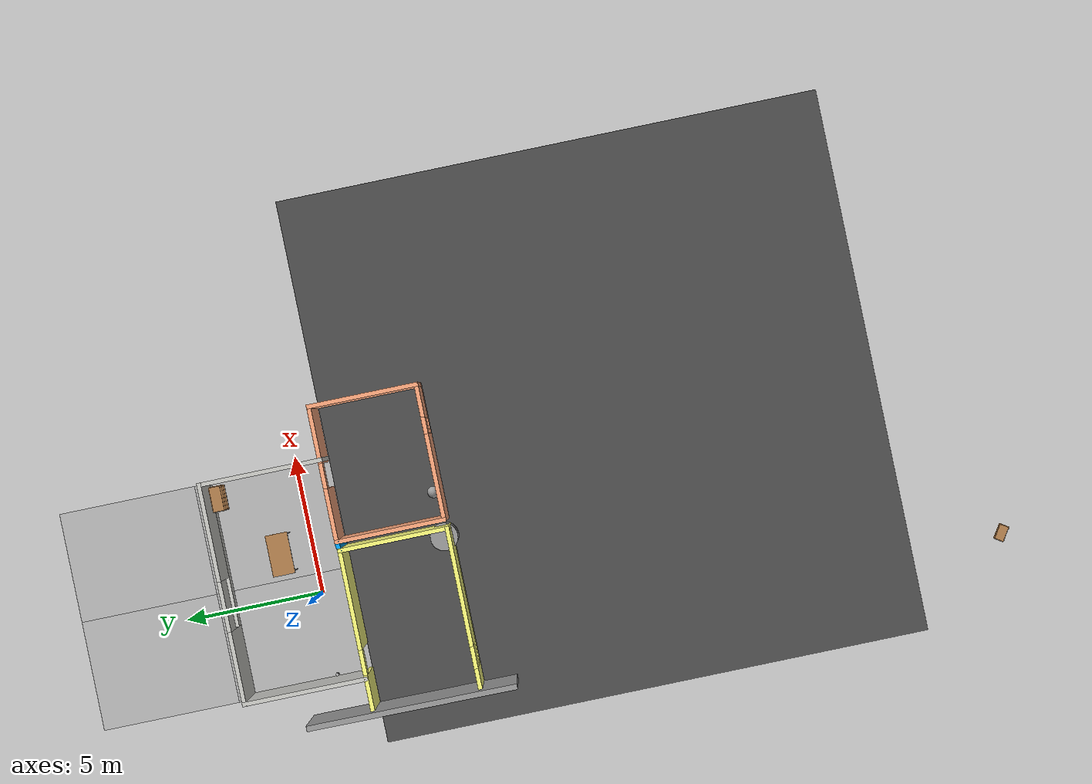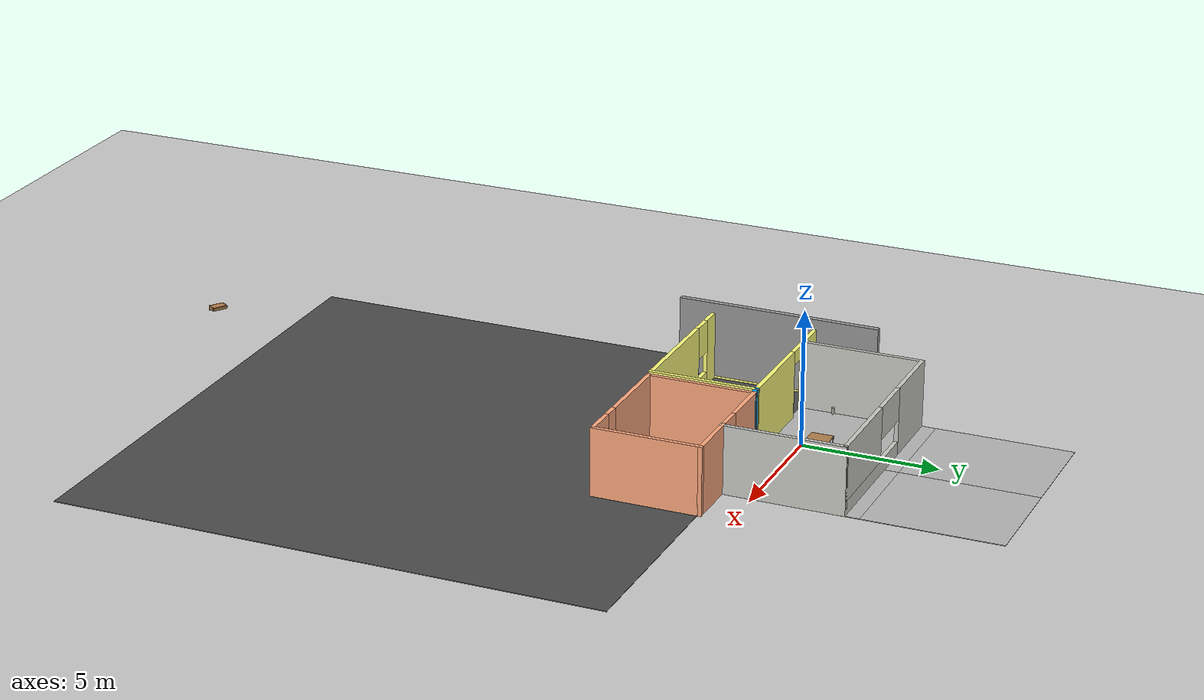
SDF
<sdf version="1.6">
 <world name="default">
  <light name="sun" type="directional">
   <pose>0 0 15 0 -0 0</pose>
   <diffuse>1 1 1 1</diffuse>
   <specular>0.1 0.1 0.1 1</specular>
   <attenuation>
    <range>1000</range>
    <constant>0.9</constant>
    <linear>0.01</linear>
    <quadratic>0.001</quadratic>
   </attenuation>
   <direction>-0.5 0.5 -1</direction>
  </light>
  <model name="ground_plane">
   <static>1</static>
   <link name="link">
    <collision name="collision">
     <geometry><plane><normal>0 0 1</normal><size>100 100</size></plane></geometry>
     <surface><friction><ode><mu>100</mu><mu2>50</mu2></ode></friction></surface>
    </collision>
    <visual name="visual">
     <transparency>1</transparency>
     <cast_shadows>0</cast_shadows>
     <geometry><plane><normal>0 0 1</normal><size>100 100</size></plane></geometry>
     <material>
      <script><uri>file://media/materials/scripts/gazebo.material</uri><name>Gazebo/Grey</name></script>
     </material>
    </visual>
   </link>
  </model>
  <gravity>0 0 -9.8</gravity>
  <magnetic_field>6e-06 2.3e-05 -4.2e-05</magnetic_field>
  <atmosphere type="adiabatic"/>
  <physics name="default_physics" default="0" type="ode">
   <max_step_size>0.001</max_step_size>
   <real_time_factor>1</real_time_factor>
   <real_time_update_rate>1000</real_time_update_rate>
  </physics>
  <scene><ambient>0.4 0.4 0.4 1</ambient><background>0.7 0.7 0.7 1</background><shadows>1</shadows></scene>
  <spherical_coordinates>
   <surface_model>EARTH_WGS84</surface_model>
   <latitude_deg>0</latitude_deg>
   <longitude_deg>0</longitude_deg>
   <elevation>0</elevation>
   <heading_deg>0</heading_deg>
  </spherical_coordinates>
  <model name="TestScenario.world">
   <pose>1.12089 -0.88489 0 0 -0 0</pose>
   <link name="Wall_0">
    <collision name="Wall_0_Collision">
     <geometry><box><size>4 0.15 2.5</size></box></geometry>
     <pose>0 0 1.25 0 -0 0</pose>
    </collision>
    <visual name="Wall_0_Visual">
     <pose>0 0 1.25 0 -0 0</pose>
     <geometry><box><size>4 0.15 2.5</size></box></geometry>
     <material>
      <script><uri>file://media/materials/scripts/gazebo.material</uri><name>Gazebo/Grey</name></script>
      <ambient>1 1 0.498039 1</ambient>
     </material>
     <meta><layer>0</layer></meta>
    </visual>
    <pose>-5.51 -2.18338 0 0 0 -1.5708</pose>
   </link>
   <link name="Wall_1">
    <pose>-2.585 -4.10838 0 0 -0 0</pose>
    <visual name="Wall_1_Visual_0">
     <pose>-2.55175 0 1.25 0 -0 0</pose>
     <geometry><box><size>0.896495 0.15 2.5</size></box></geometry>
     <material>
      <script><uri>file://media/materials/scripts/gazebo.material</uri><name>Gazebo/Grey</name></script>
      <ambient>1 1 0.498039 1</ambient>
     </material>
     <meta><layer>0</layer></meta>
    </visual>
    <collision name="Wall_1_Collision_0">
     <geometry><box><size>0.896495 0.15 2.5</size></box></geometry>
     <pose>-2.55175 0 1.25 0 -0 0</pose>
    </collision>
    <visual name="Wall_1_Visual_1">
     <pose>0.448248 0 0.25 0 -0 0</pose>
     <geometry><box><size>5.10351 0.15 0.5</size></box></geometry>
     <material>
      <script><uri>file://media/materials/scripts/gazebo.material</uri><name>Gazebo/Grey</name></script>
      <ambient>1 1 0.498039 1</ambient>
     </material>
     <meta><layer>0</layer></meta>
    </visual>
    <collision name="Wall_1_Collision_1">
     <geometry><box><size>5.10351 0.15 0.5</size></box></geometry>
     <pose>0.448248 0 0.25 0 -0 0</pose>
    </collision>
    <visual name="Wall_1_Visual_2">
     <pose>0.848248 0 1.5 0 -0 0</pose>
     <geometry><box><size>4.30351 0.15 2</size></box></geometry>
     <material>
      <script><uri>file://media/materials/scripts/gazebo.material</uri><name>Gazebo/Grey</name></script>
      <ambient>1 1 0.498039 1</ambient>
     </material>
     <meta><layer>0</layer></meta>
    </visual>
    <collision name="Wall_1_Collision_2">
     <geometry><box><size>4.30351 0.15 2</size></box></geometry>
     <pose>0.848248 0 1.5 0 -0 0</pose>
    </collision>
    <visual name="Wall_1_Visual_3">
     <pose>-1.70351 0 1.9 0 -0 0</pose>
     <geometry><box><size>0.8 0.15 1.2</size></box></geometry>
     <material>
      <script><uri>file://media/materials/scripts/gazebo.material</uri><name>Gazebo/Grey</name></script>
      <ambient>1 1 0.498039 1</ambient>
     </material>
     <meta><layer>0</layer></meta>
    </visual>
    <collision name="Wall_1_Collision_3">
     <geometry><box><size>0.8 0.15 1.2</size></box></geometry>
     <pose>-1.70351 0 1.9 0 -0 0</pose>
    </collision>
   </link>
   <link name="Wall_10">
    <collision name="Wall_10_Collision">
     <geometry><box><size>4.5 0.15 2.5</size></box></geometry>
     <pose>0 0 1.25 0 -0 0</pose>
    </collision>
    <visual name="Wall_10_Visual">
     <pose>0 0 1.25 0 -0 0</pose>
     <geometry><box><size>4.5 0.15 2.5</size></box></geometry>
     <material>
      <script><uri>file://media/materials/scripts/gazebo.material</uri><name>Gazebo/CeilingTiled</name></script>
      <ambient>0 0.666667 1 1</ambient>
     </material>
     <meta><layer>0</layer></meta>
    </visual>
    <pose>-4.25197 1.93338 0 0 -0 1.5708</pose>
   </link>
   <link name="Wall_11">
    <pose>-0.326971 4.10838 0 0 -0 0</pose>
    <visual name="Wall_11_Visual_0">
     <pose>-2.67301 0 1.25 0 -0 0</pose>
     <geometry><box><size>2.65397 0.15 2.5</size></box></geometry>
     <material>
      <script><uri>file://media/materials/scripts/gazebo.material</uri><name>Gazebo/CeilingTiled</name></script>
      <ambient>0 0.666667 1 1</ambient>
     </material>
     <meta><layer>0</layer></meta>
    </visual>
    <collision name="Wall_11_Collision_0">
     <geometry><box><size>2.65397 0.15 2.5</size></box></geometry>
     <pose>-2.67301 0 1.25 0 -0 0</pose>
    </collision>
    <visual name="Wall_11_Visual_1">
     <pose>1.32699 0 0.25 0 -0 0</pose>
     <geometry><box><size>5.34603 0.15 0.5</size></box></geometry>
     <material>
      <script><uri>file://media/materials/scripts/gazebo.material</uri><name>Gazebo/CeilingTiled</name></script>
      <ambient>0 0.666667 1 1</ambient>
     </material>
     <meta><layer>0</layer></meta>
    </visual>
    <collision name="Wall_11_Collision_1">
     <geometry><box><size>5.34603 0.15 0.5</size></box></geometry>
     <pose>1.32699 0 0.25 0 -0 0</pose>
    </collision>
    <visual name="Wall_11_Visual_2">
     <pose>2.22698 0 1.5 0 -0 0</pose>
     <geometry><box><size>3.54603 0.15 2</size></box></geometry>
     <material>
      <script><uri>file://media/materials/scripts/gazebo.material</uri><name>Gazebo/CeilingTiled</name></script>
      <ambient>0 0.666667 1 1</ambient>
     </material>
     <meta><layer>0</layer></meta>
    </visual>
    <collision name="Wall_11_Collision_2">
     <geometry><box><size>3.54603 0.15 2</size></box></geometry>
     <pose>2.22698 0 1.5 0 -0 0</pose>
    </collision>
    <visual name="Wall_11_Visual_3">
     <pose>-0.446031 0 1.9 0 -0 0</pose>
     <geometry><box><size>1.8 0.15 1.2</size></box></geometry>
     <material>
      <script><uri>file://media/materials/scripts/gazebo.material</uri><name>Gazebo/CeilingTiled</name></script>
      <ambient>0 0.666667 1 1</ambient>
     </material>
     <meta><layer>0</layer></meta>
    </visual>
    <collision name="Wall_11_Collision_3">
     <geometry><box><size>1.8 0.15 1.2</size></box></geometry>
     <pose>-0.446031 0 1.9 0 -0 0</pose>
    </collision>
   </link>
   <link name="Wall_12">
    <collision name="Wall_12_Collision">
     <geometry><box><size>4.5 0.15 2.5</size></box></geometry>
     <pose>0 0 1.25 0 -0 0</pose>
    </collision>
    <visual name="Wall_12_Visual">
     <pose>0 0 1.25 0 -0 0</pose>
     <geometry><box><size>4.5 0.15 2.5</size></box></geometry>
     <material>
      <script><uri>file://media/materials/scripts/gazebo.material</uri><name>Gazebo/CeilingTiled</name></script>
      <ambient>0 0.666667 1 1</ambient>
     </material>
     <meta><layer>0</layer></meta>
    </visual>
    <pose>3.59803 1.93338 0 0 0 -1.5708</pose>
   </link>
   <link name="Wall_14">
    <collision name="Wall_14_Collision">
     <geometry><box><size>0.47249 0.15 2.5</size></box></geometry>
     <pose>0 0 1.25 0 -0 0</pose>
    </collision>
    <visual name="Wall_14_Visual">
     <pose>0 0 1.25 0 -0 0</pose>
     <geometry><box><size>0.47249 0.15 2.5</size></box></geometry>
     <material>
      <script><uri>file://media/materials/scripts/gazebo.material</uri><name>Gazebo/Grey</name></script>
      <ambient>0 0.666667 1 1</ambient>
     </material>
     <meta><layer>0</layer></meta>
    </visual>
    <pose>0.5 -0.238381 0 0 -0 0.124355</pose>
   </link>
   <link name="Wall_2">
    <collision name="Wall_2_Collision">
     <geometry><box><size>4 0.15 2.5</size></box></geometry>
     <pose>0 0 1.25 0 -0 0</pose>
    </collision>
    <visual name="Wall_2_Visual">
     <pose>0 0 1.25 0 -0 0</pose>
     <geometry><box><size>4 0.15 2.5</size></box></geometry>
     <material>
      <script><uri>file://media/materials/scripts/gazebo.material</uri><name>Gazebo/Grey</name></script>
      <ambient>1 1 0.498039 1</ambient>
     </material>
     <meta><layer>0</layer></meta>
    </visual>
    <pose>0.34 -2.18338 0 0 -0 1.5708</pose>
   </link>
   <link name="Wall_3">
    <pose>-2.585 -0.258381 0 0 -0 3.14159</pose>
    <visual name="Wall_3_Visual_0">
     <pose>-1.18068 0 1.25 0 -0 0</pose>
     <geometry><box><size>3.63865 0.15 2.5</size></box></geometry>
     <material>
      <script><uri>file://media/materials/scripts/gazebo.material</uri><name>Gazebo/Grey</name></script>
      <ambient>1 1 0.498039 1</ambient>
     </material>
     <meta><layer>0</layer></meta>
    </visual>
    <collision name="Wall_3_Collision_0">
     <geometry><box><size>3.63865 0.15 2.5</size></box></geometry>
     <pose>-1.18068 0 1.25 0 -0 0</pose>
    </collision>
    <visual name="Wall_3_Visual_1">
     <pose>2.26932 0 1.25 0 -0 0</pose>
     <geometry><box><size>1.46135 0.15 2.5</size></box></geometry>
     <material>
      <script><uri>file://media/materials/scripts/gazebo.material</uri><name>Gazebo/Grey</name></script>
      <ambient>1 1 0.498039 1</ambient>
     </material>
     <meta><layer>0</layer></meta>
    </visual>
    <collision name="Wall_3_Collision_1">
     <geometry><box><size>1.46135 0.15 2.5</size></box></geometry>
     <pose>2.26932 0 1.25 0 -0 0</pose>
    </collision>
    <visual name="Wall_3_Visual_2">
     <pose>1.08865 0 2.25 0 -0 0</pose>
     <geometry><box><size>0.9 0.15 0.5</size></box></geometry>
     <material>
      <script><uri>file://media/materials/scripts/gazebo.material</uri><name>Gazebo/Grey</name></script>
      <ambient>1 1 0.498039 1</ambient>
     </material>
     <meta><layer>0</layer></meta>
    </visual>
    <collision name="Wall_3_Collision_2">
     <geometry><box><size>0.9 0.15 0.5</size></box></geometry>
     <pose>1.08865 0 2.25 0 -0 0</pose>
    </collision>
   </link>
   <link name="Wall_5">
    <collision name="Wall_5_Collision">
     <geometry><box><size>4 0.15 2.5</size></box></geometry>
     <pose>0 0 1.25 0 -0 0</pose>
    </collision>
    <visual name="Wall_5_Visual">
     <pose>0 0 1.25 0 -0 0</pose>
     <geometry><box><size>4 0.15 2.5</size></box></geometry>
     <material>
      <script><uri>file://media/materials/scripts/gazebo.material</uri><name>Gazebo/Grey</name></script>
      <ambient>1 0.666667 0.498039 1</ambient>
     </material>
     <meta><layer>0</layer></meta>
    </visual>
    <pose>0.66 -2.14338 0 0 0 -1.5708</pose>
   </link>
   <link name="Wall_6">
    <pose>3.085 -4.06838 0 0 -0 0</pose>
    <visual name="Wall_6_Visual_0">
     <pose>-0.924117 0 1.25 0 -0 0</pose>
     <geometry><box><size>3.15177 0.15 2.5</size></box></geometry>
     <material>
      <script><uri>file://media/materials/scripts/gazebo.material</uri><name>Gazebo/Grey</name></script>
      <ambient>1 0.666667 0.498039 1</ambient>
     </material>
     <meta><layer>0</layer></meta>
    </visual>
    <collision name="Wall_6_Collision_0">
     <geometry><box><size>3.15177 0.15 2.5</size></box></geometry>
     <pose>-0.924117 0 1.25 0 -0 0</pose>
    </collision>
    <visual name="Wall_6_Visual_1">
     <pose>1.57588 0 0.25 0 -0 0</pose>
     <geometry><box><size>1.84824 0.15 0.5</size></box></geometry>
     <material>
      <script><uri>file://media/materials/scripts/gazebo.material</uri><name>Gazebo/Grey</name></script>
      <ambient>1 0.666667 0.498039 1</ambient>
     </material>
     <meta><layer>0</layer></meta>
    </visual>
    <collision name="Wall_6_Collision_1">
     <geometry><box><size>1.84824 0.15 0.5</size></box></geometry>
     <pose>1.57588 0 0.25 0 -0 0</pose>
    </collision>
    <visual name="Wall_6_Visual_2">
     <pose>1.87588 0 1.5 0 -0 0</pose>
     <geometry><box><size>1.24823 0.15 2</size></box></geometry>
     <material>
      <script><uri>file://media/materials/scripts/gazebo.material</uri><name>Gazebo/Grey</name></script>
      <ambient>1 0.666667 0.498039 1</ambient>
     </material>
     <meta><layer>0</layer></meta>
    </visual>
    <collision name="Wall_6_Collision_2">
     <geometry><box><size>1.24823 0.15 2</size></box></geometry>
     <pose>1.87588 0 1.5 0 -0 0</pose>
    </collision>
    <visual name="Wall_6_Visual_3">
     <pose>0.951765 0 2 0 -0 0</pose>
     <geometry><box><size>0.6 0.15 1</size></box></geometry>
     <material>
      <script><uri>file://media/materials/scripts/gazebo.material</uri><name>Gazebo/Grey</name></script>
      <ambient>1 0.666667 0.498039 1</ambient>
     </material>
     <meta><layer>0</layer></meta>
    </visual>
    <collision name="Wall_6_Collision_3">
     <geometry><box><size>0.6 0.15 1</size></box></geometry>
     <pose>0.951765 0 2 0 -0 0</pose>
    </collision>
   </link>
   <link name="Wall_7">
    <collision name="Wall_7_Collision">
     <geometry><box><size>4 0.15 2.5</size></box></geometry>
     <pose>0 0 1.25 0 -0 0</pose>
    </collision>
    <visual name="Wall_7_Visual">
     <pose>0 0 1.25 0 -0 0</pose>
     <geometry><box><size>4 0.15 2.5</size></box></geometry>
     <material>
      <script><uri>file://media/materials/scripts/gazebo.material</uri><name>Gazebo/Grey</name></script>
      <ambient>1 0.666667 0.498039 1</ambient>
     </material>
     <meta><layer>0</layer></meta>
    </visual>
    <pose>5.51 -2.14338 0 0 -0 1.5708</pose>
   </link>
   <link name="Wall_8">
    <pose>3.085 -0.218381 0 0 -0 3.14159</pose>
    <visual name="Wall_8_Visual_0">
     <pose>-1.4416 0 1.25 0 -0 0</pose>
     <geometry><box><size>2.1168 0.15 2.5</size></box></geometry>
     <material>
      <script><uri>file://media/materials/scripts/gazebo.material</uri><name>Gazebo/Grey</name></script>
      <ambient>1 0.666667 0.498039 1</ambient>
     </material>
     <meta><layer>0</layer></meta>
    </visual>
    <collision name="Wall_8_Collision_0">
     <geometry><box><size>2.1168 0.15 2.5</size></box></geometry>
     <pose>-1.4416 0 1.25 0 -0 0</pose>
    </collision>
    <visual name="Wall_8_Visual_1">
     <pose>1.5084 0 1.25 0 -0 0</pose>
     <geometry><box><size>1.9832 0.15 2.5</size></box></geometry>
     <material>
      <script><uri>file://media/materials/scripts/gazebo.material</uri><name>Gazebo/Grey</name></script>
      <ambient>1 0.666667 0.498039 1</ambient>
     </material>
     <meta><layer>0</layer></meta>
    </visual>
    <collision name="Wall_8_Collision_1">
     <geometry><box><size>1.9832 0.15 2.5</size></box></geometry>
     <pose>1.5084 0 1.25 0 -0 0</pose>
    </collision>
    <visual name="Wall_8_Visual_2">
     <pose>0.066797 0 2.25 0 -0 0</pose>
     <geometry><box><size>0.9 0.15 0.5</size></box></geometry>
     <material>
      <script><uri>file://media/materials/scripts/gazebo.material</uri><name>Gazebo/Grey</name></script>
      <ambient>1 0.666667 0.498039 1</ambient>
     </material>
     <meta><layer>0</layer></meta>
    </visual>
    <collision name="Wall_8_Collision_2">
     <geometry><box><size>0.9 0.15 0.5</size></box></geometry>
     <pose>0.066797 0 2.25 0 -0 0</pose>
    </collision>
   </link>
   <static>1</static>
  </model>
  <model name="bookshelf">
   <static>1</static>
   <link name="link">
    <inertial><mass>1</mass></inertial>
    <collision name="back">
     <pose>0 0.005 0.6 0 -0 0</pose>
     <geometry><box><size>0.9 0.01 1.2</size></box></geometry>
    </collision>
    <visual name="visual1">
     <pose>0 0.005 0.6 0 -0 0</pose>
     <geometry><box><size>0.9 0.01 1.2</size></box></geometry>
     <material>
      <script><uri>file://media/materials/scripts/gazebo.material</uri><name>Gazebo/Wood</name></script>
     </material>
    </visual>
    <collision name="left_side">
     <pose>0.45 -0.195 0.6 0 -0 0</pose>
     <geometry><box><size>0.02 0.4 1.2</size></box></geometry>
    </collision>
    <visual name="visual2">
     <pose>0.45 -0.195 0.6 0 -0 0</pose>
     <geometry><box><size>0.02 0.4 1.2</size></box></geometry>
     <material>
      <script><uri>file://media/materials/scripts/gazebo.material</uri><name>Gazebo/Wood</name></script>
     </material>
    </visual>
    <collision name="right_side">
     <pose>-0.45 -0.195 0.6 0 -0 0</pose>
     <geometry><box><size>0.02 0.4 1.2</size></box></geometry>
    </collision>
    <visual name="visual3">
     <pose>-0.45 -0.195 0.6 0 -0 0</pose>
     <geometry><box><size>0.02 0.4 1.2</size></box></geometry>
     <material>
      <script><uri>file://media/materials/scripts/gazebo.material</uri><name>Gazebo/Wood</name></script>
     </material>
    </visual>
    <collision name="bottom">
     <pose>0 -0.195 0.03 0 -0 0</pose>
     <geometry><box><size>0.88 0.4 0.06</size></box></geometry>
    </collision>
    <visual name="visual4">
     <pose>0 -0.195 0.03 0 -0 0</pose>
     <geometry><box><size>0.88 0.4 0.06</size></box></geometry>
     <material>
      <script><uri>file://media/materials/scripts/gazebo.material</uri><name>Gazebo/Wood</name></script>
     </material>
    </visual>
    <collision name="top">
     <pose>0 -0.195 1.19 0 -0 0</pose>
     <geometry><box><size>0.88 0.4 0.02</size></box></geometry>
    </collision>
    <visual name="visual5">
     <pose>0 -0.195 1.19 0 -0 0</pose>
     <geometry><box><size>0.88 0.4 0.02</size></box></geometry>
     <material>
      <script><uri>file://media/materials/scripts/gazebo.material</uri><name>Gazebo/Wood</name></script>
     </material>
    </visual>
    <collision name="low_shelf">
     <pose>0 -0.195 0.43 0 -0 0</pose>
     <geometry><box><size>0.88 0.4 0.02</size></box></geometry>
    </collision>
    <visual name="visual6">
     <pose>0 -0.195 0.43 0 -0 0</pose>
     <geometry><box><size>0.88 0.4 0.02</size></box></geometry>
     <material>
      <script><uri>file://media/materials/scripts/gazebo.material</uri><name>Gazebo/Wood</name></script>
     </material>
    </visual>
    <collision name="high_shelf">
     <pose>0 -0.195 0.8 0 -0 0</pose>
     <geometry><box><size>0.88 0.4 0.02</size></box></geometry>
    </collision>
    <visual name="visual7">
     <pose>0 -0.195 0.8 0 -0 0</pose>
     <geometry><box><size>0.88 0.4 0.02</size></box></geometry>
     <material>
      <script><uri>file://media/materials/scripts/gazebo.material</uri><name>Gazebo/Wood</name></script>
     </material>
    </visual>
   </link>
   <pose>4.10392 3.11172 0 0 -0 0</pose>
  </model>
  <model name="grey_wall">
   <static>1</static>
   <link name="link">
    <pose>0 0 1.4 0 -0 0</pose>
    <collision name="collision"><geometry><box><size>7.5 0.2 2.8</size></box></geometry></collision>
    <visual name="visual">
     <cast_shadows>0</cast_shadows>
     <geometry><box><size>7.5 0.2 2.8</size></box></geometry>
     <material>
      <script>
       <uri>model://grey_wall/materials/scripts</uri>
       <uri>model://grey_wall/materials/textures</uri>
       <name>vrc/grey_wall</name>
      </script>
     </material>
    </visual>
   </link>
   <pose>-4.39419 -2.53941 0.08762 0 -0 1.56489</pose>
  </model>
  <model name="mud_box">
   <static>1</static>
   <link name="link">
    <collision name="collision"><geometry><box><size>8 10 0.2</size></box></geometry></collision>
    <visual name="visual_1">
     <pose>-2 2.5 0 0 -0 0</pose>
     <cast_shadows>0</cast_shadows>
     <geometry><box><size>4 5 0.2</size></box></geometry>
     <material>
      <script>
       <uri>model://mud_box/materials/scripts</uri>
       <uri>model://mud_box/materials/textures</uri>
       <name>vrc/mud</name>
      </script>
     </material>
    </visual>
    <visual name="visual_2">
     <pose>2 2.5 0 0 -0 0</pose>
     <cast_shadows>0</cast_shadows>
     <geometry><box><size>4 5 0.2</size></box></geometry>
     <material>
      <script>
       <uri>model://mud_box/materials/scripts</uri>
       <uri>model://mud_box/materials/textures</uri>
       <name>vrc/mud</name>
      </script>
     </material>
    </visual>
    <visual name="visual_3">
     <pose>2 -2.5 0 0 -0 0</pose>
     <cast_shadows>0</cast_shadows>
     <geometry><box><size>4 5 0.2</size></box></geometry>
     <material>
      <script>
       <uri>model://mud_box/materials/scripts</uri>
       <uri>model://mud_box/materials/textures</uri>
       <name>vrc/mud</name>
      </script>
     </material>
    </visual>
    <visual name="visual_4">
     <pose>-2 -2.5 0 0 -0 0</pose>
     <cast_shadows>0</cast_shadows>
     <geometry><box><size>4 5 0.2</size></box></geometry>
     <material>
      <script>
       <uri>model://mud_box/materials/scripts</uri>
       <uri>model://mud_box/materials/textures</uri>
       <name>vrc/mud</name>
      </script>
     </material>
    </visual>
   </link>
   <pose>0.715638 3.79163 -0.119521 0 -0 0</pose>
  </model>
  <model name="table">
   <static>1</static>
   <link name="link">
    <collision name="surface">
     <pose>0 0 1 0 -0 0</pose>
     <geometry><box><size>1.5 0.8 0.03</size></box></geometry>
     <surface><friction><ode><mu>0.6</mu><mu2>0.6</mu2></ode></friction></surface>
    </collision>
    <visual name="visual1">
     <pose>0 0 1 0 -0 0</pose>
     <geometry><box><size>1.5 0.8 0.03</size></box></geometry>
     <material>
      <script><uri>file://media/materials/scripts/gazebo.material</uri><name>Gazebo/Wood</name></script>
     </material>
    </visual>
    <collision name="front_left_leg">
     <pose>0.68 0.38 0.5 0 -0 0</pose>
     <geometry><cylinder><radius>0.02</radius><length>1</length></cylinder></geometry>
    </collision>
    <visual name="front_left_leg">
     <pose>0.68 0.38 0.5 0 -0 0</pose>
     <geometry><cylinder><radius>0.02</radius><length>1</length></cylinder></geometry>
     <material>
      <script><uri>file://media/materials/scripts/gazebo.material</uri><name>Gazebo/Grey</name></script>
     </material>
    </visual>
    <collision name="front_right_leg">
     <pose>0.68 -0.38 0.5 0 -0 0</pose>
     <geometry><cylinder><radius>0.02</radius><length>1</length></cylinder></geometry>
    </collision>
    <visual name="front_right_leg">
     <pose>0.68 -0.38 0.5 0 -0 0</pose>
     <geometry><cylinder><radius>0.02</radius><length>1</length></cylinder></geometry>
     <material>
      <script><uri>file://media/materials/scripts/gazebo.material</uri><name>Gazebo/Grey</name></script>
     </material>
    </visual>
    <collision name="back_right_leg">
     <pose>-0.68 -0.38 0.5 0 -0 0</pose>
     <geometry><cylinder><radius>0.02</radius><length>1</length></cylinder></geometry>
    </collision>
    <visual name="back_right_leg">
     <pose>-0.68 -0.38 0.5 0 -0 0</pose>
     <geometry><cylinder><radius>0.02</radius><length>1</length></cylinder></geometry>
     <material>
      <script><uri>file://media/materials/scripts/gazebo.material</uri><name>Gazebo/Grey</name></script>
     </material>
    </visual>
    <collision name="back_left_leg">
     <pose>-0.68 0.38 0.5 0 -0 0</pose>
     <geometry><cylinder><radius>0.02</radius><length>1</length></cylinder></geometry>
    </collision>
    <visual name="back_left_leg">
     <pose>-0.68 0.38 0.5 0 -0 0</pose>
     <geometry><cylinder><radius>0.02</radius><length>1</length></cylinder></geometry>
     <material>
      <script><uri>file://media/materials/scripts/gazebo.material</uri><name>Gazebo/Grey</name></script>
     </material>
    </visual>
   </link>
   <pose>1.70039 1.11892 0 0 -0 0</pose>
  </model>
  <model name="wooden_case">
   <link name="base">
    <pose>0 0 0.024 0 -0 0</pose>
    <inertial>
     <pose>-0.022184 0 0.171592 0 -0 0</pose>
     <mass>3.96264</mass>
     <inertia>
      <ixx>0.213536</ixx>
      <ixy>0</ixy>
      <ixz>0.000779377</ixz>
      <iyy>0.0708943</iyy>
      <iyz>0</iyz>
      <izz>0.154604</izz>
     </inertia>
    </inertial>
    <collision name="collision_back">
     <pose>-0.053975 0 0.1778 0 -0 0</pose>
     <geometry><box><size>0.01905 0.5461 0.3175</size></box></geometry>
     <surface>
      <contact>
       <poissons_ratio>0.347</poissons_ratio>
       <elastic_modulus>8.8e+09</elastic_modulus>
       <ode><kp>100000</kp><kd>100</kd><max_vel>100</max_vel><min_depth>0.001</min_depth></ode>
      </contact>
      <friction>
       <torsional>
        <coefficient>1</coefficient>
        <use_patch_radius>0</use_patch_radius>
        <surface_radius>0.01</surface_radius>
       </torsional>
      </friction>
     </surface>
    </collision>
    <visual name="visual_back">
     <pose>-0.053975 0 0.1778 0 -0 0</pose>
     <geometry><box><size>0.01905 0.5461 0.3175</size></box></geometry>
     <material>
      <script><uri>file://media/materials/scripts/gazebo.material</uri><name>Gazebo/Wood</name></script>
     </material>
    </visual>
    <collision name="collision_bottom">
     <pose>0 0 0.009525 0 -0 0</pose>
     <geometry><box><size>0.127 0.5842 0.01905</size></box></geometry>
     <surface>
      <contact>
       <poissons_ratio>0.347</poissons_ratio>
       <elastic_modulus>8.8e+09</elastic_modulus>
       <ode><kp>100000</kp><kd>100</kd><max_vel>100</max_vel><min_depth>0.001</min_depth></ode>
      </contact>
      <friction>
       <torsional>
        <coefficient>1</coefficient>
        <use_patch_radius>0</use_patch_radius>
        <surface_radius>0.01</surface_radius>
       </torsional>
      </friction>
     </surface>
    </collision>
    <visual name="visual_bottom">
     <pose>0 0 0.009525 0 -0 0</pose>
     <geometry><box><size>0.127 0.5842 0.01905</size></box></geometry>
     <material>
      <script><uri>file://media/materials/scripts/gazebo.material</uri><name>Gazebo/Wood</name></script>
     </material>
    </visual>
    <collision name="collision_top">
     <pose>0 0 0.346075 0 -0 0</pose>
     <geometry><box><size>0.127 0.5842 0.01905</size></box></geometry>
     <surface>
      <contact>
       <poissons_ratio>0.347</poissons_ratio>
       <elastic_modulus>8.8e+09</elastic_modulus>
       <ode><kp>100000</kp><kd>100</kd><max_vel>100</max_vel><min_depth>0.001</min_depth></ode>
      </contact>
      <friction>
       <torsional>
        <coefficient>1</coefficient>
        <use_patch_radius>0</use_patch_radius>
        <surface_radius>0.01</surface_radius>
       </torsional>
      </friction>
     </surface>
    </collision>
    <visual name="visual_top">
     <pose>0 0 0.346075 0 -0 0</pose>
     <geometry><box><size>0.127 0.5842 0.01905</size></box></geometry>
     <material>
      <script><uri>file://media/materials/scripts/gazebo.material</uri><name>Gazebo/Wood</name></script>
     </material>
    </visual>
    <collision name="collision_left">
     <pose>0 -0.282575 0.1778 0 -0 0</pose>
     <geometry><box><size>0.127 0.01905 0.3175</size></box></geometry>
     <surface>
      <contact>
       <poissons_ratio>0.347</poissons_ratio>
       <elastic_modulus>8.8e+09</elastic_modulus>
       <ode><kp>100000</kp><kd>100</kd><max_vel>100</max_vel><min_depth>0.001</min_depth></ode>
      </contact>
      <friction>
       <torsional>
        <coefficient>1</coefficient>
        <use_patch_radius>0</use_patch_radius>
        <surface_radius>0.01</surface_radius>
       </torsional>
      </friction>
     </surface>
    </collision>
    <visual name="visual_left">
     <pose>0 -0.282575 0.1778 0 -0 0</pose>
     <geometry><box><size>0.127 0.01905 0.3175</size></box></geometry>
     <material>
      <script><uri>file://media/materials/scripts/gazebo.material</uri><name>Gazebo/Wood</name></script>
     </material>
    </visual>
    <collision name="collision_right">
     <pose>0 0.282575 0.1778 0 -0 0</pose>
     <geometry><box><size>0.127 0.01905 0.3175</size></box></geometry>
     <surface>
      <contact>
       <poissons_ratio>0.347</poissons_ratio>
       <elastic_modulus>8.8e+09</elastic_modulus>
       <ode><kp>100000</kp><kd>100</kd><max_vel>100</max_vel><min_depth>0.001</min_depth></ode>
      </contact>
      <friction>
       <torsional>
        <coefficient>1</coefficient>
        <use_patch_radius>0</use_patch_radius>
        <surface_radius>0.01</surface_radius>
       </torsional>
      </friction>
     </surface>
    </collision>
    <visual name="visual_right">
     <pose>0 0.282575 0.1778 0 -0 0</pose>
     <geometry><box><size>0.127 0.01905 0.3175</size></box></geometry>
     <material>
      <script><uri>file://media/materials/scripts/gazebo.material</uri><name>Gazebo/Wood</name></script>
     </material>
    </visual>
    <collision name="collision_block_left">
     <pose>0.0095 -0.2151 -0.012 0 -0 0</pose>
     <geometry><box><size>0.108 0.05 0.024</size></box></geometry>
     <surface>
      <contact>
       <poissons_ratio>0.347</poissons_ratio>
       <elastic_modulus>8.8e+09</elastic_modulus>
       <ode><kp>100000</kp><kd>100</kd><max_vel>100</max_vel><min_depth>0.001</min_depth></ode>
      </contact>
      <friction>
       <torsional>
        <coefficient>1</coefficient>
        <use_patch_radius>0</use_patch_radius>
        <surface_radius>0.01</surface_radius>
       </torsional>
      </friction>
     </surface>
    </collision>
    <visual name="visual_block_left">
     <pose>0.0095 -0.2151 -0.012 0 -0 0</pose>
     <geometry><box><size>0.108 0.05 0.024</size></box></geometry>
     <material>
      <script><uri>file://media/materials/scripts/gazebo.material</uri><name>Gazebo/Wood</name></script>
     </material>
    </visual>
    <collision name="collision_block_right">
     <pose>0.0095 0.2151 -0.012 0 -0 0</pose>
     <geometry><box><size>0.108 0.05 0.024</size></box></geometry>
     <surface>
      <contact>
       <poissons_ratio>0.347</poissons_ratio>
       <elastic_modulus>8.8e+09</elastic_modulus>
       <ode><kp>100000</kp><kd>100</kd><max_vel>100</max_vel><min_depth>0.001</min_depth></ode>
      </contact>
      <friction>
       <torsional>
        <coefficient>1</coefficient>
        <use_patch_radius>0</use_patch_radius>
        <surface_radius>0.01</surface_radius>
       </torsional>
      </friction>
     </surface>
    </collision>
    <visual name="visual_block_right">
     <pose>0.0095 0.2151 -0.012 0 -0 0</pose>
     <geometry><box><size>0.108 0.05 0.024</size></box></geometry>
     <material>
      <script><uri>file://media/materials/scripts/gazebo.material</uri><name>Gazebo/Wood</name></script>
     </material>
    </visual>
   </link>
   <link name="lid">
    <pose>0.243775 0 0.009525 0 -0 0</pose>
    <inertial>
     <mass>1.97874</mass>
     <inertia>
      <ixx>0.0563367</ixx>
      <ixy>0</ixy>
      <ixz>0</ixz>
      <iyy>0.020911</iyy>
      <iyz>0</iyz>
      <izz>0.0771281</izz>
     </inertia>
    </inertial>
    <collision name="collision">
     <geometry><box><size>0.3556 0.5842 0.01905</size></box></geometry>
     <surface>
      <contact>
       <poissons_ratio>0.347</poissons_ratio>
       <elastic_modulus>8.8e+09</elastic_modulus>
       <ode><kp>100000</kp><kd>100</kd><max_vel>100</max_vel><min_depth>0.001</min_depth></ode>
      </contact>
      <friction>
       <torsional>
        <coefficient>1</coefficient>
        <use_patch_radius>0</use_patch_radius>
        <surface_radius>0.01</surface_radius>
       </torsional>
      </friction>
     </surface>
    </collision>
    <visual name="visual">
     <geometry><box><size>0.3556 0.5842 0.01905</size></box></geometry>
     <material>
      <script><uri>file://media/materials/scripts/gazebo.material</uri><name>Gazebo/Wood</name></script>
     </material>
    </visual>
    <visual name="tee_nut_1">
     <pose>0.122 -0.216 0 0 -0 0</pose>
     <geometry><cylinder><radius>0.00635</radius><length>0.0192405</length></cylinder></geometry>
     <material>
      <script><uri>file://media/materials/scripts/gazebo.material</uri><name>Gazebo/Grey</name></script>
     </material>
    </visual>
    <visual name="tee_nut_2">
     <pose>0.122 -0.088 0 0 -0 0</pose>
     <geometry><cylinder><radius>0.00635</radius><length>0.0192405</length></cylinder></geometry>
     <material>
      <script><uri>file://media/materials/scripts/gazebo.material</uri><name>Gazebo/Grey</name></script>
     </material>
    </visual>
    <visual name="tee_nut_3">
     <pose>0.122 0.088 0 0 -0 0</pose>
     <geometry><cylinder><radius>0.00635</radius><length>0.0192405</length></cylinder></geometry>
     <material>
      <script><uri>file://media/materials/scripts/gazebo.material</uri><name>Gazebo/Grey</name></script>
     </material>
    </visual>
    <visual name="tee_nut_4">
     <pose>0.122 0.216 0 0 -0 0</pose>
     <geometry><cylinder><radius>0.00635</radius><length>0.0192405</length></cylinder></geometry>
     <material>
      <script><uri>file://media/materials/scripts/gazebo.material</uri><name>Gazebo/Grey</name></script>
     </material>
    </visual>
   </link>
   <joint name="lid_hinge" type="revolute">
    <pose>-0.1778 0 0.01905 0 -0 0</pose>
    <parent>base</parent>
    <child>lid</child>
    <axis>
     <xyz>0 1 0</xyz>
     <limit><upper>0.523599</upper><lower>-1.5708</lower></limit>
     <use_parent_model_frame>0</use_parent_model_frame>
     <dynamics><spring_reference>0</spring_reference><spring_stiffness>0</spring_stiffness></dynamics>
    </axis>
   </joint>
   <pose>-2.99969 -24.6599 0.093399 -0 1.57077 0.987708</pose>
  </model>
  <model name="asphalt_plane">
   <static>1</static>
   <link name="link">
    <collision name="collision"><geometry><box><size>20 20 0.1</size></box></geometry></collision>
    <visual name="visual">
     <cast_shadows>0</cast_shadows>
     <geometry><box><size>20 20 0.1</size></box></geometry>
     <material>
      <script>
       <uri>model://asphalt_plane/materials/scripts</uri>
       <uri>model://asphalt_plane/materials/textures</uri>
       <name>vrc/asphalt</name>
      </script>
     </material>
    </visual>
   </link>
   <pose>4.20075 -11.1914 -0.068988 0 -0 0</pose>
  </model>
  <model name="unit_sphere">
   <pose>2.75211 -4.6608 0.21257 -0.011966 0 0</pose>
   <link name="link">
    <inertial>
     <mass>1</mass>
     <inertia><ixx>0.1</ixx><ixy>0</ixy><ixz>0</ixz><iyy>0.1</iyy><iyz>0</iyz><izz>0.1</izz></inertia>
    </inertial>
    <collision name="collision"><geometry><sphere><radius>0.21257</radius></sphere></geometry></collision>
    <visual name="visual">
     <geometry><sphere><radius>0.21257</radius></sphere></geometry>
     <material>
      <script><name>Gazebo/Grey</name><uri>file://media/materials/scripts/gazebo.material</uri></script>
     </material>
    </visual>
   </link>
  </model>
  <model name="unit_cylinder">
   <pose>1.12224 -4.75443 0.499992 -3e-06 3e-06 0</pose>
   <link name="link">
    <inertial>
     <mass>1</mass>
     <inertia><ixx>0.145833</ixx><ixy>0</ixy><ixz>0</ixz><iyy>0.145833</iyy><iyz>0</iyz><izz>0.125</izz></inertia>
    </inertial>
    <collision name="collision">
     <geometry><cylinder><radius>0.5</radius><length>1</length></cylinder></geometry>
    </collision>
    <visual name="visual">
     <geometry><cylinder><radius>0.5</radius><length>1</length></cylinder></geometry>
     <material>
      <script><name>Gazebo/Grey</name><uri>file://media/materials/scripts/gazebo.material</uri></script>
     </material>
    </visual>
   </link>
  </model>
  <model name="beer">
   <link name="link">
    <pose>0 0 0.115 0 -0 0</pose>
    <inertial>
     <mass>0.39</mass>
     <inertia><ixx>0.00058</ixx><ixy>0</ixy><ixz>0</ixz><iyy>0.00058</iyy><iyz>0</iyz><izz>0.00019</izz></inertia>
    </inertial>
    <collision name="collision">
     <geometry><cylinder><radius>0.055</radius><length>0.23</length></cylinder></geometry>
    </collision>
    <visual name="visual">
     <geometry><cylinder><radius>0.055</radius><length>0.23</length></cylinder></geometry>
     <material>
      <script>
       <uri>model://beer/materials/scripts</uri>
       <uri>model://beer/materials/textures</uri>
       <name>Beer/Diffuse</name>
      </script>
     </material>
    </visual>
   </link>
   <pose>-3.00107 0.084103 -2e-06 0 0 -1.2e-05</pose>
  </model>
 </world>
</sdf>
